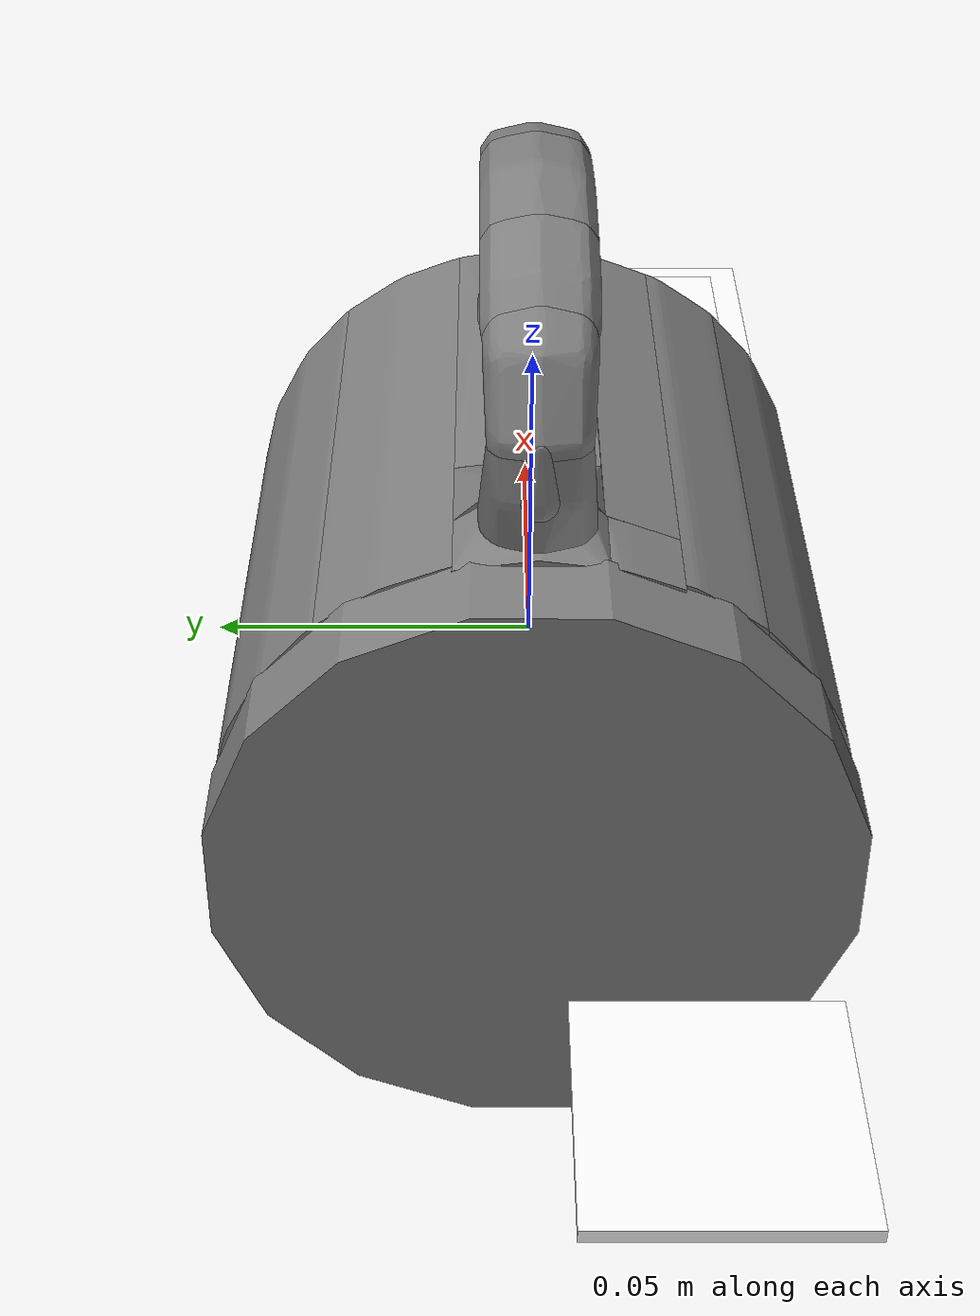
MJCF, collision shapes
<?xml version="1.0" encoding="utf-8"?>
<mujoco model="mug_with_aruco">

    <include file="mug.xml"/>
    <include file="../aruco_markers/aruco_markers.xml"/>

    <worldbody>

        <body name="mug_with_aruco">

            <!-- Central site used for reference or visualization -->
            <site name="center" pos="0 0 0" euler="0 0 0" type="sphere" size="0.0001 0.0001 0.0001" rgba="0.9 0.9 0.9 1" group="4"/>

            <!-- Aruco marker 1 -->-0.06
            <geom name="aruco1_collider" type="box" size="0.0225 0.0225 0.0005" material="card" pos="0.095 -0.021 0.005" euler="0 3.14 1.57" mass="0" rgba="1 1 1 1" contype="0" conaffinity="0" group="3"/>
            <geom type="box" size="0.0175 0.0175 0.001" material="aruco_1" pos="0.095 -0.021 0.005" euler="0 3.14 1.57" rgba="1 1 1 1" contype="0" conaffinity="0" group="3"/>
            <site name="aruco_1" pos="0.095 -0.021 0.005" euler="0 3.14 1.57" type="sphere" size="0.0001" group="4"/>

            <!-- Aruco marker 2 -->
            <geom type="box" size="0.0175 0.0175 0.001" material="aruco_2" pos="-0.105 -0.021 0.005" euler="0 3.14 1.57" rgba="1 1 1 1" contype="0" conaffinity="0" group="3"/>
            <site name="aruco_2" pos="-0.105 -0.021 0.005" euler="0 3.14 1.57" type="sphere" size="0.0001" group="4"/>
        </body>
    </worldbody>
</mujoco>

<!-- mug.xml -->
<mujoco model="mug">
  <compiler angle="radian" meshdir="assets" texturedir="assets" autolimits="true"/>
  <asset>
    <material name="mug" specular="0.8" shininess="0.5" rgba="1 1 1 1"/>
    <mesh file="mug.obj"/>
    <mesh file="mug_collision_001.obj"/>
    <mesh file="mug_collision_002.obj"/>
    <mesh file="mug_collision_003.obj"/>
    <mesh file="mug_collision_004.obj"/>
    <mesh file="mug_collision_005.obj"/>
    <mesh file="mug_collision_006.obj"/>
    <mesh file="mug_collision_007.obj"/>
    <mesh file="mug_collision_008.obj"/>
    <mesh file="mug_collision_009.obj"/>
    <mesh file="mug_collision_010.obj"/>
    <mesh file="mug_collision_011.obj"/>
    <mesh file="mug_collision_012.obj"/>
    <mesh file="mug_collision_013.obj"/>
    <mesh file="mug_collision_014.obj"/>
    <mesh file="mug_collision_015.obj"/>
    <mesh file="mug_collision_016.obj"/>
    <mesh file="mug_collision_017.obj"/>
    <mesh file="mug_collision_018.obj"/>
    <mesh file="mug_collision_019.obj"/>
    <mesh file="mug_collision_020.obj"/>
    <mesh file="mug_collision_021.obj"/>
    <mesh file="mug_collision_022.obj"/>
    <mesh file="mug_collision_023.obj"/>
    <mesh file="mug_collision_024.obj"/>
    <mesh file="mug_collision_025.obj"/>
    <mesh file="mug_collision_026.obj"/>
  </asset>
  <default>
    <default class="mug">
      <default class="visual">
        <geom type="mesh" contype="0" conaffinity="0" group="2" material="mug"/>
      </default>
      <default class="collision">
        <geom type="mesh" group="3" density="1000" solimp="0.98 0.99 0.001" solref="0.004 1"/>
      </default>
      <geom pos="-0.06 0 0" euler="-1.57 0 -1.57"/>
    </default>
  </default>
  <worldbody>
    <body name="mug" childclass="mug">
      <geom name="mesh" mesh="mug" class="visual"/>
      <geom name="collider_001" mesh="mug_collision_001" class="collision"/>
      <geom name="collider_002" mesh="mug_collision_002" class="collision"/>
      <geom name="collider_003" mesh="mug_collision_003" class="collision"/>
      <geom name="collider_004" mesh="mug_collision_004" class="collision"/>
      <geom name="collider_005" mesh="mug_collision_005" class="collision"/>
      <geom name="collider_006" mesh="mug_collision_006" class="collision"/>
      <geom name="collider_007" mesh="mug_collision_007" class="collision"/>
      <geom name="collider_008" mesh="mug_collision_008" class="collision"/>
      <geom name="collider_009" mesh="mug_collision_009" class="collision"/>
      <geom name="collider_010" mesh="mug_collision_010" class="collision"/>
      <geom name="collider_011" mesh="mug_collision_011" class="collision"/>
      <geom name="collider_012" mesh="mug_collision_012" class="collision"/>
      <geom name="collider_013" mesh="mug_collision_013" class="collision"/>
      <geom name="collider_014" mesh="mug_collision_014" class="collision"/>
      <geom name="collider_015" mesh="mug_collision_015" class="collision"/>
      <geom name="collider_016" mesh="mug_collision_016" class="collision"/>
      <geom name="collider_017" mesh="mug_collision_017" class="collision"/>
      <geom name="collider_018" mesh="mug_collision_018" class="collision"/>
      <geom name="collider_019" mesh="mug_collision_019" class="collision"/>
      <geom name="collider_020" mesh="mug_collision_020" class="collision"/>
      <geom name="collider_021" mesh="mug_collision_021" class="collision"/>
      <geom name="collider_022" mesh="mug_collision_022" class="collision"/>
      <geom name="collider_023" mesh="mug_collision_023" class="collision"/>
      <geom name="collider_024" mesh="mug_collision_024" class="collision"/>
      <geom name="collider_025" mesh="mug_collision_025" class="collision"/>
      <geom name="collider_026" mesh="mug_collision_026" class="collision"/>
    </body>
  </worldbody>
</mujoco>

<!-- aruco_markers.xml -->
<mujoco>
    <asset>
        <!-- Definition of ArUco Textures -->
        <texture type="2d" name="marker0" file="aruco_4x4_0.png"/>
        <texture type="2d" name="marker1" file="aruco_4x4_1.png"/>
        <texture type="2d" name="marker2" file="aruco_4x4_2.png"/>

        <!-- Definition of Materials Using ArUco Textures -->
        <material name="card"/>
        <material name="aruco_0" texture="marker0"/>
        <material name="aruco_1" texture="marker1"/>
        <material name="aruco_2" texture="marker2"/>
    </asset>
</mujoco>
